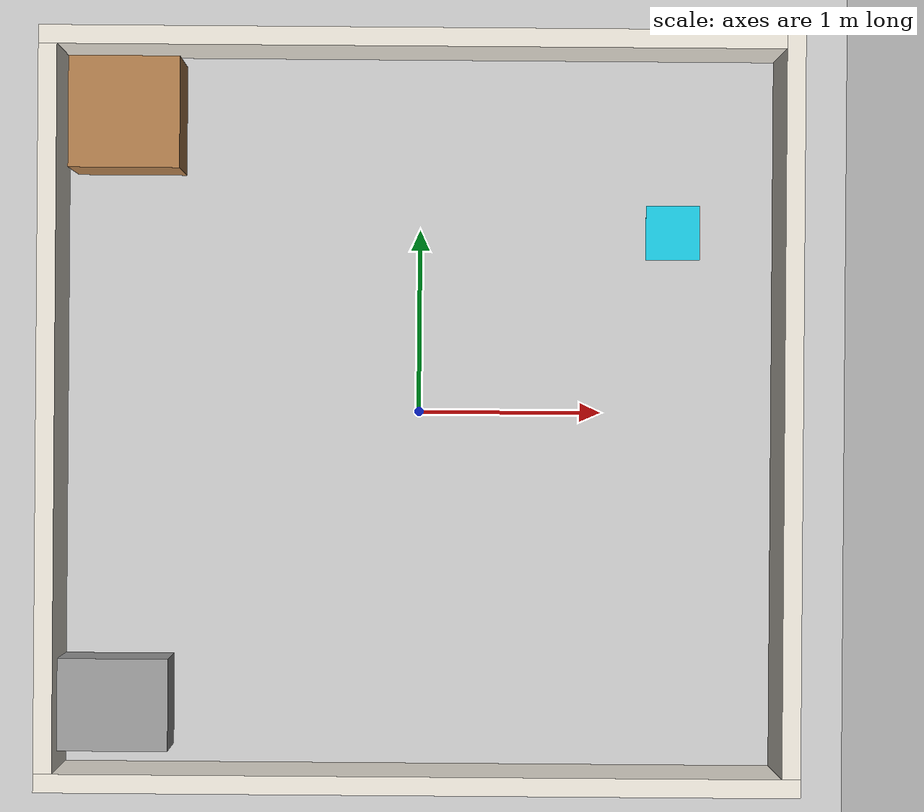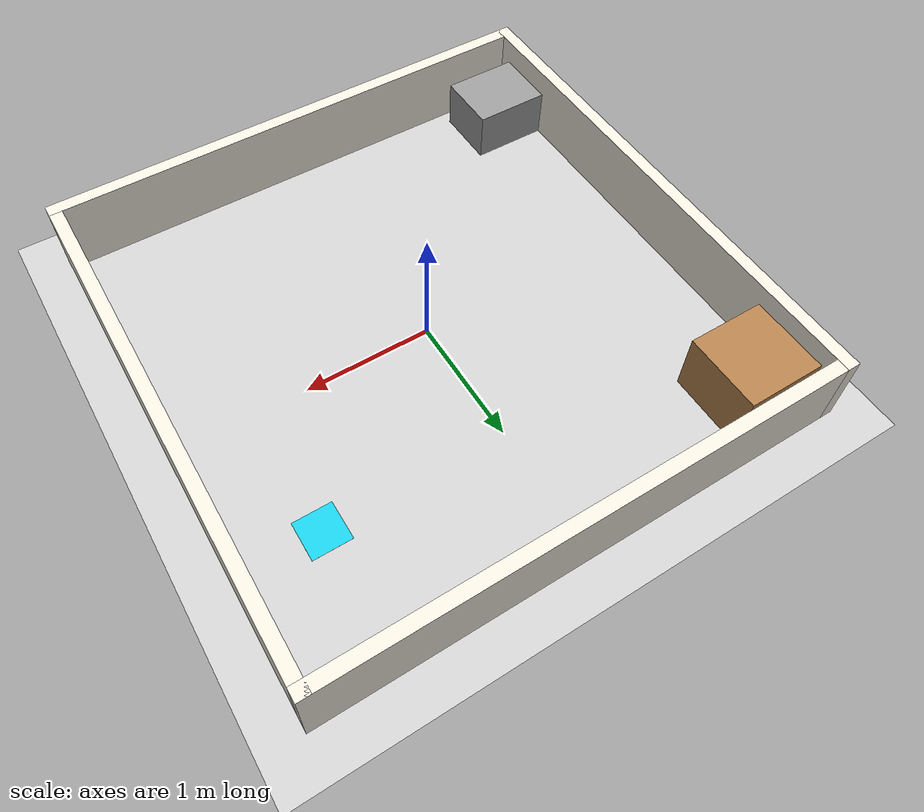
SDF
<sdf version="1.6">
 <world name="fetch_deliver_arena">
  <physics type="ode">
   <real_time_update_rate>1000.0</real_time_update_rate>
   <max_step_size>0.001</max_step_size>
   <real_time_factor>1</real_time_factor>
   <ode>
    <solver><type>quick</type><iters>150</iters><precon_iters>0</precon_iters><sor>1.4</sor></solver>
    <constraints>
     <cfm>0.00001</cfm>
     <erp>0.2</erp>
     <contact_max_correcting_vel>2000</contact_max_correcting_vel>
     <contact_surface_layer>0.001</contact_surface_layer>
    </constraints>
   </ode>
  </physics>
  <scene><ambient>0.5 0.5 0.5 1</ambient><background>0.7 0.75 0.8 1</background><shadows>false</shadows></scene>
  <include><uri>model://sun</uri></include>
  <include><uri>model://ground_plane</uri></include>
  <model name="walls">
   <static>true</static>
   <link name="wall_0">
    <pose>0.0000 -2.0000 0.3000 0 0 0.0000</pose>
    <collision name="collision"><geometry><box><size>4.1000 0.1000 0.6000</size></box></geometry></collision>
    <visual name="visual">
     <geometry><box><size>4.1000 0.1000 0.6000</size></box></geometry>
     <material>
      <ambient>0.93 0.91 0.86 1</ambient>
      <diffuse>0.93 0.91 0.86 1</diffuse>
      <specular>0.1 0.1 0.1 1</specular>
     </material>
    </visual>
   </link>
   <link name="wall_1">
    <pose>2.0000 0.0000 0.3000 0 0 1.5708</pose>
    <collision name="collision"><geometry><box><size>4.1000 0.1000 0.6000</size></box></geometry></collision>
    <visual name="visual">
     <geometry><box><size>4.1000 0.1000 0.6000</size></box></geometry>
     <material>
      <ambient>0.93 0.91 0.86 1</ambient>
      <diffuse>0.93 0.91 0.86 1</diffuse>
      <specular>0.1 0.1 0.1 1</specular>
     </material>
    </visual>
   </link>
   <link name="wall_2">
    <pose>0.0000 2.0000 0.3000 0 0 3.1416</pose>
    <collision name="collision"><geometry><box><size>4.1000 0.1000 0.6000</size></box></geometry></collision>
    <visual name="visual">
     <geometry><box><size>4.1000 0.1000 0.6000</size></box></geometry>
     <material>
      <ambient>0.93 0.91 0.86 1</ambient>
      <diffuse>0.93 0.91 0.86 1</diffuse>
      <specular>0.1 0.1 0.1 1</specular>
     </material>
    </visual>
   </link>
   <link name="wall_3">
    <pose>-2.0000 0.0000 0.3000 0 0 -1.5708</pose>
    <collision name="collision"><geometry><box><size>4.1000 0.1000 0.6000</size></box></geometry></collision>
    <visual name="visual">
     <geometry><box><size>4.1000 0.1000 0.6000</size></box></geometry>
     <material>
      <ambient>0.93 0.91 0.86 1</ambient>
      <diffuse>0.93 0.91 0.86 1</diffuse>
      <specular>0.1 0.1 0.1 1</specular>
     </material>
    </visual>
   </link>
  </model>
  <model name="cabinet">
   <static>true</static>
   <pose>-1.6 1.6 0 0 0 0.0</pose>
   <link name="link">
    <pose>0.0000 0.0000 0.2500 0 0 0.0000</pose>
    <collision name="collision"><geometry><box><size>0.6000 0.6000 0.5000</size></box></geometry></collision>
    <visual name="visual">
     <geometry><box><size>0.6000 0.6000 0.5000</size></box></geometry>
     <material>
      <script><uri>file://media/materials/scripts/gazebo.material</uri><name>Gazebo/Wood</name></script>
     </material>
    </visual>
   </link>
  </model>
  <model name="low_shelf">
   <static>true</static>
   <pose>-1.65 -1.6 0 0 0 0.0</pose>
   <link name="link">
    <pose>0.0000 0.0000 0.2000 0 0 0.0000</pose>
    <collision name="collision"><geometry><box><size>0.6000 0.5000 0.4000</size></box></geometry></collision>
    <visual name="visual">
     <geometry><box><size>0.6000 0.5000 0.4000</size></box></geometry>
     <material>
      <script><uri>file://media/materials/scripts/gazebo.material</uri><name>Gazebo/Grey</name></script>
     </material>
    </visual>
   </link>
  </model>
  <model name="dropoff_zone">
   <static>true</static>
   <pose>1.4 1.0 0.0005 0 0 0</pose>
   <link name="link">
    <visual name="visual">
     <geometry><box><size>0.30 0.30 0.001</size></box></geometry>
     <material>
      <ambient>0.1 0.8 0.9 1</ambient>
      <diffuse>0.1 0.8 0.9 1</diffuse>
      <specular>0.1 0.1 0.1 1</specular>
     </material>
    </visual>
   </link>
  </model>
  <plugin name="gazebo_ros_state" filename="libgazebo_ros_state.so">
   <ros><namespace>/gazebo</namespace></ros>
   <update_rate>20.0</update_rate>
  </plugin>
  <plugin name="honest_link_attacher" filename="libhonest_link_attacher.so">
   <ros><namespace>/fetch_deliver</namespace></ros>
   <robot_model>turtlebot3_manipulation_system</robot_model>
   <base_link>base_footprint</base_link>
   <ee_link>link5</ee_link>
   <ee_offset>0.126 0 0</ee_offset>
   <left_finger_joint>gripper_left_joint</left_finger_joint>
   <right_finger_joint>gripper_right_joint</right_finger_joint>
   <finger_base_gap>0.042</finger_base_gap>
   <max_closed_opening>0.034</max_closed_opening>
   <pose_tolerance>0.02</pose_tolerance>
   <angle_tolerance>0.35</angle_tolerance>
   <object_tolerance>0.045</object_tolerance>
  </plugin>
 </world>
</sdf>
